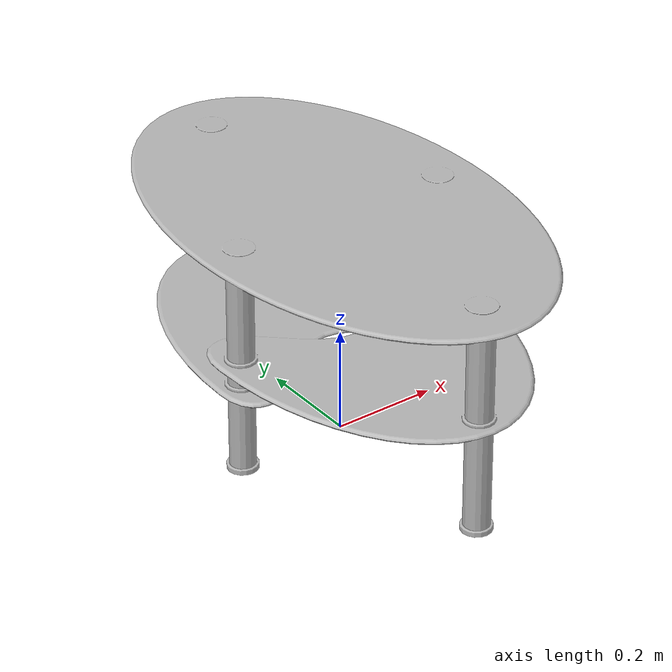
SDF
<?xml version='1.0'?>
<sdf version='1.4'>
  <model name='550'>
    <pose>0 0 0 0 0 0</pose>
    <static>true</static>
    <link name='link'>
      <collision name='collision'>
        <pose>0 0 0 0 0 0</pose>
        <geometry>
          <box>
            <size>0.58659 0.984278 2</size>
          </box>
        </geometry>
      </collision>
      <visual name='visual'>
        <pose>0 0 0 0 0 0</pose>
        <geometry>
          <mesh><uri>model://550/550.dae</uri></mesh>
        </geometry>
      </visual>
    </link>
  </model>
</sdf>
